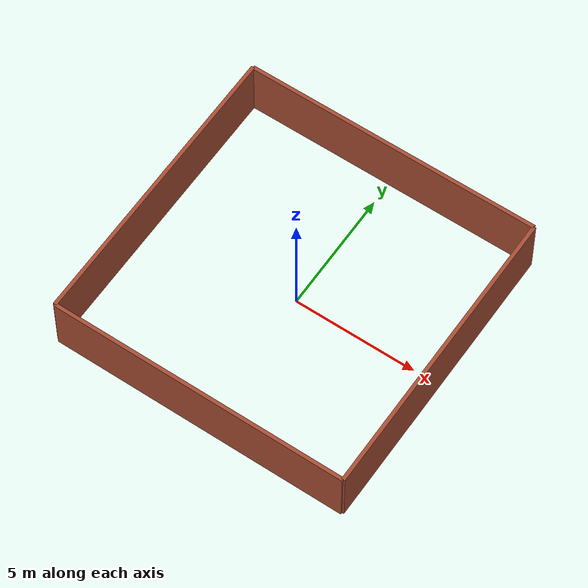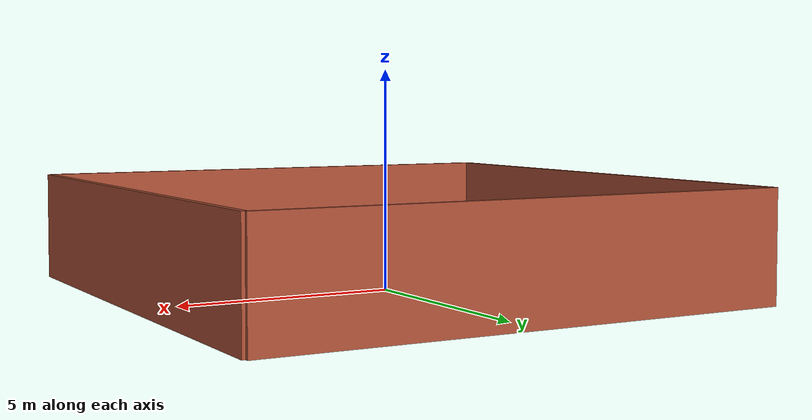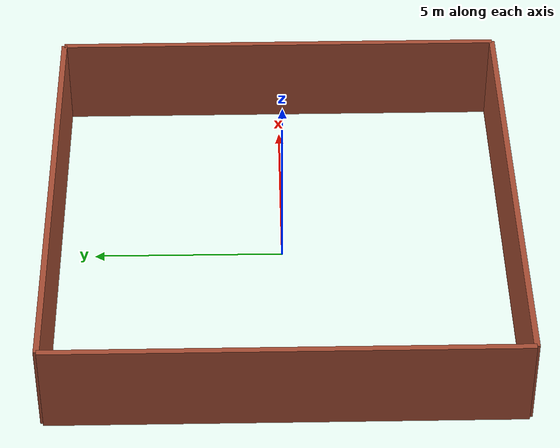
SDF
<?xml version='1.0'?>
<sdf version='1.6'>
  <model name='building'>
    <pose frame=''>0 0 0 0 -0 0</pose>
    <link name='Wall_1'>
      <collision name='Wall_1_Collision'>
        <geometry>
          <box>
            <size>12.0 0.15 2.5</size>
          </box>
        </geometry>
        <pose frame=''>0 0 1.25 0 -0 0</pose>
      </collision>
      <visual name='Wall_1_Visual'>
        <pose frame=''>0 0 1.25 0 -0 0</pose>
        <geometry>
          <box>
            <size>12.0 0.15 2.5</size>
          </box>
        </geometry>
        <material>
          <script>
            <uri>file://media/materials/scripts/gazebo.material</uri>
            <name>Gazebo/Bricks</name>
          </script>
          <ambient>1 1 1 1</ambient>
        </material>
        <meta>
          <layer>0</layer>
        </meta>
      </visual>
      <pose frame=''>0 6.0 0 0 -0 0</pose>
    </link>
    <link name='Wall_2'>
      <collision name='Wall_2_Collision'>
        <geometry>
          <box>
            <size>12.0 0.15 2.5</size>
          </box>
        </geometry>
        <pose frame=''>0 0 1.25 0 -0 0</pose>
      </collision>
      <visual name='Wall_2_Visual'>
        <pose frame=''>0 0 1.25 0 -0 0</pose>
        <geometry>
          <box>
            <size>12.0 0.15 2.5</size>
          </box>
        </geometry>
        <material>
          <script>
            <uri>file://media/materials/scripts/gazebo.material</uri>
            <name>Gazebo/Bricks</name>
          </script>
          <ambient>1 1 1 1</ambient>
        </material>
        <meta>
          <layer>0</layer>
        </meta>
      </visual>
      <pose frame=''>6.0 0 0 0 -0 -1.5707</pose>
    </link>
    <link name='Wall_3'>
      <collision name='Wall_3_Collision'>
        <geometry>
          <box>
            <size>12.0 0.15 2.5</size>
          </box>
        </geometry>
        <pose frame=''>0 0 1.25 0 -0 0</pose>
      </collision>
      <visual name='Wall_3_Visual'>
        <pose frame=''>0 0 1.25 0 -0 0</pose>
        <geometry>
          <box>
            <size>12.0 0.15 2.5</size>
          </box>
        </geometry>
        <material>
          <script>
            <uri>file://media/materials/scripts/gazebo.material</uri>
            <name>Gazebo/Bricks</name>
          </script>
          <ambient>1 1 1 1</ambient>
        </material>
        <meta>
          <layer>0</layer>
        </meta>
      </visual>
      <pose frame=''>0 -6.0 0 0 -0 3.14159</pose>
    </link>
    <link name='Wall_4'>
      <collision name='Wall_4_Collision'>
        <geometry>
          <box>
            <size>12.0 0.15 2.5</size>
          </box>
        </geometry>
        <pose frame=''>0 0 1.25 0 -0 0</pose>
      </collision>
      <visual name='Wall_4_Visual'>
        <pose frame=''>0 0 1.25 0 -0 0</pose>
        <geometry>
          <box>
            <size>12.0 0.15 2.5</size>
          </box>
        </geometry>
        <material>
          <script>
            <uri>file://media/materials/scripts/gazebo.material</uri>
            <name>Gazebo/Bricks</name>
          </script>
          <ambient>1 1 1 1</ambient>
        </material>
        <meta>
          <layer>0</layer>
        </meta>
      </visual>
      <pose frame=''>-6.0 0 0 0 -0 1.5707</pose>
    </link>
    <static>1</static>
  </model>
</sdf>
